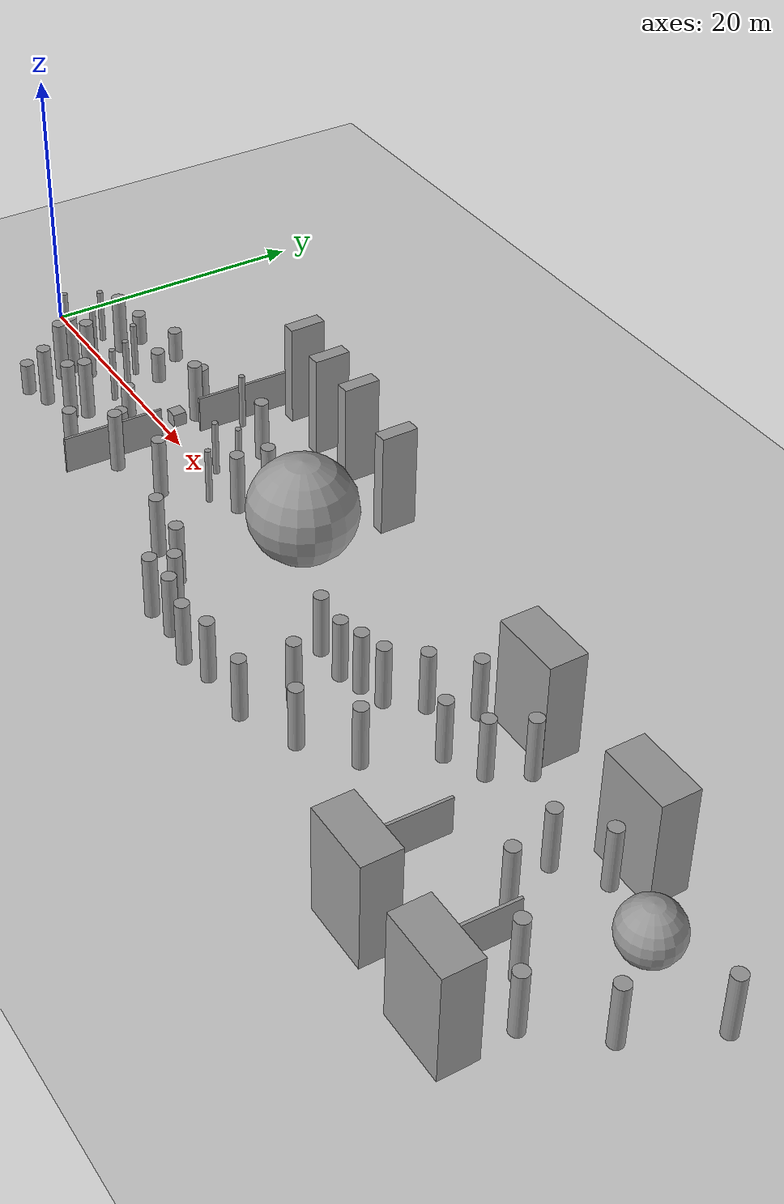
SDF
<sdf version="1.6">
 <world name="default">
  <plugin name="ros_interface_plugin" filename="librotors_gazebo_ros_interface_plugin.so"/>
  <light name="sun" type="directional">
   <pose>0 0 10 0 -0 0</pose>
   <diffuse>0.8 0.8 0.8 1</diffuse>
   <specular>0.2 0.2 0.2 1</specular>
   <attenuation>
    <range>1000</range>
    <constant>0.9</constant>
    <linear>0.01</linear>
    <quadratic>0.001</quadratic>
   </attenuation>
   <direction>-0.5 0.1 -0.9</direction>
  </light>
  <model name="ground_plane">
   <static>1</static>
   <link name="link">
    <collision name="collision">
     <geometry><plane><normal>0 0 1</normal><size>100 100</size></plane></geometry>
     <surface><friction><ode><mu>100</mu><mu2>50</mu2></ode></friction></surface>
    </collision>
    <visual name="visual">
     <cast_shadows>0</cast_shadows>
     <geometry><plane><normal>0 0 1</normal><size>100 100</size></plane></geometry>
     <material>
      <script><uri>file://media/materials/scripts/gazebo.material</uri><name>Gazebo/Grey</name></script>
     </material>
    </visual>
   </link>
  </model>
  <gravity>0 0 -9.8</gravity>
  <magnetic_field>6e-06 2.3e-05 -4.2e-05</magnetic_field>
  <atmosphere type="adiabatic"/>
  <physics name="default_physics" default="0" type="ode">
   <max_step_size>0.001</max_step_size>
   <real_time_factor>1</real_time_factor>
   <real_time_update_rate>1000</real_time_update_rate>
  </physics>
  <scene><ambient>0.4 0.4 0.4 1</ambient><background>0.7 0.7 0.7 1</background><shadows>1</shadows></scene>
  <spherical_coordinates>
   <surface_model>EARTH_WGS84</surface_model>
   <latitude_deg>0</latitude_deg>
   <longitude_deg>0</longitude_deg>
   <elevation>0</elevation>
   <heading_deg>0</heading_deg>
  </spherical_coordinates>
  <model name="unit_cylinder">
   <pose>6.50293 2.03461 2.31233 -0 -0 -0.000822</pose>
   <link name="link">
    <inertial>
     <mass>1</mass>
     <inertia><ixx>0.145833</ixx><ixy>0</ixy><ixz>0</ixz><iyy>0.145833</iyy><iyz>0</iyz><izz>0.125</izz></inertia>
    </inertial>
    <collision name="collision">
     <geometry><cylinder><radius>0.5</radius><length>4.62468</length></cylinder></geometry>
    </collision>
    <visual name="visual">
     <geometry><cylinder><radius>0.5</radius><length>4.62468</length></cylinder></geometry>
     <material>
      <script><name>Gazebo/Grey</name><uri>file://media/materials/scripts/gazebo.material</uri></script>
     </material>
    </visual>
   </link>
  </model>
  <model name="unit_cylinder_0">
   <pose>6.23663 -2.44131 1.24645 0 -0 0.277129</pose>
   <link name="link">
    <inertial>
     <mass>1</mass>
     <inertia><ixx>0.145833</ixx><ixy>0</ixy><ixz>0</ixz><iyy>0.145833</iyy><iyz>0</iyz><izz>0.125</izz></inertia>
    </inertial>
    <collision name="collision">
     <geometry><cylinder><radius>0.5</radius><length>2.4929</length></cylinder></geometry>
    </collision>
    <visual name="visual">
     <geometry><cylinder><radius>0.5</radius><length>2.4929</length></cylinder></geometry>
     <material>
      <script><name>Gazebo/Grey</name><uri>file://media/materials/scripts/gazebo.material</uri></script>
     </material>
    </visual>
   </link>
  </model>
  <model name="unit_cylinder_1">
   <pose>10.075 1.46908 2.13217 -0 -0 -0.013612</pose>
   <link name="link">
    <inertial>
     <mass>1</mass>
     <inertia><ixx>0.145833</ixx><ixy>0</ixy><ixz>0</ixz><iyy>0.145833</iyy><iyz>0</iyz><izz>0.125</izz></inertia>
    </inertial>
    <collision name="collision">
     <geometry><cylinder><radius>0.226518</radius><length>4.26436</length></cylinder></geometry>
    </collision>
    <visual name="visual">
     <geometry><cylinder><radius>0.226518</radius><length>4.26436</length></cylinder></geometry>
     <material>
      <script><name>Gazebo/Grey</name><uri>file://media/materials/scripts/gazebo.material</uri></script>
     </material>
    </visual>
   </link>
  </model>
  <model name="unit_cylinder_clone">
   <pose>8.51391 -1.611 2.31234 -0 -0 -0.022394</pose>
   <link name="link">
    <inertial>
     <mass>1</mass>
     <inertia><ixx>0.145833</ixx><ixy>0</ixy><ixz>0</ixz><iyy>0.145833</iyy><iyz>0</iyz><izz>0.125</izz></inertia>
    </inertial>
    <collision name="collision">
     <geometry><cylinder><radius>0.5</radius><length>4.62468</length></cylinder></geometry>
    </collision>
    <visual name="visual">
     <geometry><cylinder><radius>0.5</radius><length>4.62468</length></cylinder></geometry>
     <material>
      <script><name>Gazebo/Grey</name><uri>file://media/materials/scripts/gazebo.material</uri></script>
     </material>
    </visual>
   </link>
  </model>
  <model name="unit_cylinder_clone_0">
   <pose>7.60953 -3.40559 2.31364 -0.000928 -0.002442 -0.577151</pose>
   <link name="link">
    <inertial>
     <mass>1</mass>
     <inertia><ixx>0.145833</ixx><ixy>0</ixy><ixz>0</ixz><iyy>0.145833</iyy><iyz>0</iyz><izz>0.125</izz></inertia>
    </inertial>
    <collision name="collision">
     <geometry><cylinder><radius>0.5</radius><length>4.62468</length></cylinder></geometry>
    </collision>
    <visual name="visual">
     <geometry><cylinder><radius>0.5</radius><length>4.62468</length></cylinder></geometry>
     <material>
      <script><name>Gazebo/Grey</name><uri>file://media/materials/scripts/gazebo.material</uri></script>
     </material>
    </visual>
   </link>
  </model>
  <model name="unit_cylinder_0_clone">
   <pose>6.24492 3.77978 1.24644 0 -0 7.3e-05</pose>
   <link name="link">
    <inertial>
     <mass>1</mass>
     <inertia><ixx>0.145833</ixx><ixy>0</ixy><ixz>0</ixz><iyy>0.145833</iyy><iyz>0</iyz><izz>0.125</izz></inertia>
    </inertial>
    <collision name="collision">
     <geometry><cylinder><radius>0.5</radius><length>2.4929</length></cylinder></geometry>
    </collision>
    <visual name="visual">
     <geometry><cylinder><radius>0.5</radius><length>2.4929</length></cylinder></geometry>
     <material>
      <script><name>Gazebo/Grey</name><uri>file://media/materials/scripts/gazebo.material</uri></script>
     </material>
    </visual>
   </link>
  </model>
  <model name="unit_cylinder_1_clone">
   <pose>6.20745 -0.046272 2.13217 -0 -0 -0.013612</pose>
   <link name="link">
    <inertial>
     <mass>1</mass>
     <inertia><ixx>0.145833</ixx><ixy>0</ixy><ixz>0</ixz><iyy>0.145833</iyy><iyz>0</iyz><izz>0.125</izz></inertia>
    </inertial>
    <collision name="collision">
     <geometry><cylinder><radius>0.226518</radius><length>4.26436</length></cylinder></geometry>
    </collision>
    <visual name="visual">
     <geometry><cylinder><radius>0.226518</radius><length>4.26436</length></cylinder></geometry>
     <material>
      <script><name>Gazebo/Grey</name><uri>file://media/materials/scripts/gazebo.material</uri></script>
     </material>
    </visual>
   </link>
  </model>
  <model name="unit_cylinder_1_clone_0">
   <pose>12.3322 -1.38154 2.13217 -0 -0 -0.013512</pose>
   <link name="link">
    <inertial>
     <mass>1</mass>
     <inertia><ixx>0.145833</ixx><ixy>0</ixy><ixz>0</ixz><iyy>0.145833</iyy><iyz>0</iyz><izz>0.125</izz></inertia>
    </inertial>
    <collision name="collision">
     <geometry><cylinder><radius>0.226518</radius><length>4.26436</length></cylinder></geometry>
    </collision>
    <visual name="visual">
     <geometry><cylinder><radius>0.226518</radius><length>4.26436</length></cylinder></geometry>
     <material>
      <script><name>Gazebo/Grey</name><uri>file://media/materials/scripts/gazebo.material</uri></script>
     </material>
    </visual>
   </link>
  </model>
  <model name="unit_cylinder_0_clone_clone">
   <pose>11.6874 2.60305 1.24644 0 -0 6.9e-05</pose>
   <link name="link">
    <inertial>
     <mass>1</mass>
     <inertia><ixx>0.145833</ixx><ixy>0</ixy><ixz>0</ixz><iyy>0.145833</iyy><iyz>0</iyz><izz>0.125</izz></inertia>
    </inertial>
    <collision name="collision">
     <geometry><cylinder><radius>0.5</radius><length>2.4929</length></cylinder></geometry>
    </collision>
    <visual name="visual">
     <geometry><cylinder><radius>0.5</radius><length>2.4929</length></cylinder></geometry>
     <material>
      <script><name>Gazebo/Grey</name><uri>file://media/materials/scripts/gazebo.material</uri></script>
     </material>
    </visual>
   </link>
  </model>
  <model name="unit_cylinder_0_clone_clone_0">
   <pose>14.6954 -1.38639 1.24644 0 -0 7.8e-05</pose>
   <link name="link">
    <inertial>
     <mass>1</mass>
     <inertia><ixx>0.145833</ixx><ixy>0</ixy><ixz>0</ixz><iyy>0.145833</iyy><iyz>0</iyz><izz>0.125</izz></inertia>
    </inertial>
    <collision name="collision">
     <geometry><cylinder><radius>0.5</radius><length>2.4929</length></cylinder></geometry>
    </collision>
    <visual name="visual">
     <geometry><cylinder><radius>0.5</radius><length>2.4929</length></cylinder></geometry>
     <material>
      <script><name>Gazebo/Grey</name><uri>file://media/materials/scripts/gazebo.material</uri></script>
     </material>
    </visual>
   </link>
  </model>
  <model name="unit_cylinder_1_clone_1">
   <pose>4.54888 1.41697 2.13217 -0 -0 -0.0136</pose>
   <link name="link">
    <inertial>
     <mass>1</mass>
     <inertia><ixx>0.145833</ixx><ixy>0</ixy><ixz>0</ixz><iyy>0.145833</iyy><iyz>0</iyz><izz>0.125</izz></inertia>
    </inertial>
    <collision name="collision">
     <geometry><cylinder><radius>0.226518</radius><length>4.26436</length></cylinder></geometry>
    </collision>
    <visual name="visual">
     <geometry><cylinder><radius>0.226518</radius><length>4.26436</length></cylinder></geometry>
     <material>
      <script><name>Gazebo/Grey</name><uri>file://media/materials/scripts/gazebo.material</uri></script>
     </material>
    </visual>
   </link>
  </model>
  <model name="grey_wall_clone">
   <static>1</static>
   <link name="link">
    <pose>0 0 1.4 0 -0 0</pose>
    <collision name="collision"><geometry><box><size>7.5 0.2 2.8</size></box></geometry></collision>
    <visual name="visual">
     <cast_shadows>0</cast_shadows>
     <geometry><box><size>7.5 0.2 2.8</size></box></geometry>
     <material>
      <script>
       <uri>model://grey_wall/materials/scripts</uri>
       <uri>model://grey_wall/materials/textures</uri>
       <name>vrc/grey_wall</name>
      </script>
     </material>
    </visual>
   </link>
   <pose>19.2527 5.83227 0 0 -0 1.55087</pose>
  </model>
  <model name="grey_wall_clone_0">
   <static>1</static>
   <link name="link">
    <pose>0 0 1.4 0 -0 0</pose>
    <collision name="collision"><geometry><box><size>7.5 0.2 2.8</size></box></geometry></collision>
    <visual name="visual">
     <cast_shadows>0</cast_shadows>
     <geometry><box><size>7.5 0.2 2.8</size></box></geometry>
     <material>
      <script>
       <uri>model://grey_wall/materials/scripts</uri>
       <uri>model://grey_wall/materials/textures</uri>
       <name>vrc/grey_wall</name>
      </script>
     </material>
    </visual>
   </link>
   <pose>18.8888 -4.60675 0 0 -0 1.55087</pose>
  </model>
  <model name="unit_cylinder_0_clone_clone_clone_0">
   <pose>15.2782 4.36437 1.24644 0 -0 7.9e-05</pose>
   <link name="link">
    <inertial>
     <mass>1</mass>
     <inertia><ixx>0.145833</ixx><ixy>0</ixy><ixz>0</ixz><iyy>0.145833</iyy><iyz>0</iyz><izz>0.125</izz></inertia>
    </inertial>
    <collision name="collision">
     <geometry><cylinder><radius>0.5</radius><length>2.4929</length></cylinder></geometry>
    </collision>
    <visual name="visual">
     <geometry><cylinder><radius>0.5</radius><length>2.4929</length></cylinder></geometry>
     <material>
      <script><name>Gazebo/Grey</name><uri>file://media/materials/scripts/gazebo.material</uri></script>
     </material>
    </visual>
   </link>
  </model>
  <model name="unit_cylinder_0_clone_clone_clone_1">
   <pose>9.7892 5.00969 1.24644 0 -0 8.1e-05</pose>
   <link name="link">
    <inertial>
     <mass>1</mass>
     <inertia><ixx>0.145833</ixx><ixy>0</ixy><ixz>0</ixz><iyy>0.145833</iyy><iyz>0</iyz><izz>0.125</izz></inertia>
    </inertial>
    <collision name="collision">
     <geometry><cylinder><radius>0.5</radius><length>2.4929</length></cylinder></geometry>
    </collision>
    <visual name="visual">
     <geometry><cylinder><radius>0.5</radius><length>2.4929</length></cylinder></geometry>
     <material>
      <script><name>Gazebo/Grey</name><uri>file://media/materials/scripts/gazebo.material</uri></script>
     </material>
    </visual>
   </link>
  </model>
  <model name="unit_cylinder_0_clone_clone_clone_2">
   <pose>8.2035 -6.41578 1.24644 0 -0 7.4e-05</pose>
   <link name="link">
    <inertial>
     <mass>1</mass>
     <inertia><ixx>0.145833</ixx><ixy>0</ixy><ixz>0</ixz><iyy>0.145833</iyy><iyz>0</iyz><izz>0.125</izz></inertia>
    </inertial>
    <collision name="collision">
     <geometry><cylinder><radius>0.5</radius><length>2.4929</length></cylinder></geometry>
    </collision>
    <visual name="visual">
     <geometry><cylinder><radius>0.5</radius><length>2.4929</length></cylinder></geometry>
     <material>
      <script><name>Gazebo/Grey</name><uri>file://media/materials/scripts/gazebo.material</uri></script>
     </material>
    </visual>
   </link>
  </model>
  <model name="unit_cylinder_0_clone_clone_clone_3">
   <pose>17.2109 -3.19137 1.24645 0 -0 7.8e-05</pose>
   <link name="link">
    <inertial>
     <mass>1</mass>
     <inertia><ixx>0.145833</ixx><ixy>0</ixy><ixz>0</ixz><iyy>0.145833</iyy><iyz>0</iyz><izz>0.125</izz></inertia>
    </inertial>
    <collision name="collision">
     <geometry><cylinder><radius>0.5</radius><length>2.4929</length></cylinder></geometry>
    </collision>
    <visual name="visual">
     <geometry><cylinder><radius>0.5</radius><length>2.4929</length></cylinder></geometry>
     <material>
      <script><name>Gazebo/Grey</name><uri>file://media/materials/scripts/gazebo.material</uri></script>
     </material>
    </visual>
   </link>
  </model>
  <model name="unit_cylinder_1_clone_2">
   <pose>20.1487 5.08031 2.13217 -0 -0 -0.013613</pose>
   <link name="link">
    <inertial>
     <mass>1</mass>
     <inertia><ixx>0.145833</ixx><ixy>0</ixy><ixz>0</ixz><iyy>0.145833</iyy><iyz>0</iyz><izz>0.125</izz></inertia>
    </inertial>
    <collision name="collision">
     <geometry><cylinder><radius>0.226518</radius><length>4.26436</length></cylinder></geometry>
    </collision>
    <visual name="visual">
     <geometry><cylinder><radius>0.226518</radius><length>4.26436</length></cylinder></geometry>
     <material>
      <script><name>Gazebo/Grey</name><uri>file://media/materials/scripts/gazebo.material</uri></script>
     </material>
    </visual>
   </link>
  </model>
  <model name="unit_cylinder_1_clone_3">
   <pose>24.2609 0.674248 2.13217 -0 -0 -0.013568</pose>
   <link name="link">
    <inertial>
     <mass>1</mass>
     <inertia><ixx>0.145833</ixx><ixy>0</ixy><ixz>0</ixz><iyy>0.145833</iyy><iyz>0</iyz><izz>0.125</izz></inertia>
    </inertial>
    <collision name="collision">
     <geometry><cylinder><radius>0.226518</radius><length>4.26436</length></cylinder></geometry>
    </collision>
    <visual name="visual">
     <geometry><cylinder><radius>0.226518</radius><length>4.26436</length></cylinder></geometry>
     <material>
      <script><name>Gazebo/Grey</name><uri>file://media/materials/scripts/gazebo.material</uri></script>
     </material>
    </visual>
   </link>
  </model>
  <model name="unit_cylinder_1_clone_4">
   <pose>26.9209 -1.30059 2.13217 -0 -0 -0.01355</pose>
   <link name="link">
    <inertial>
     <mass>1</mass>
     <inertia><ixx>0.145833</ixx><ixy>0</ixy><ixz>0</ixz><iyy>0.145833</iyy><iyz>0</iyz><izz>0.125</izz></inertia>
    </inertial>
    <collision name="collision">
     <geometry><cylinder><radius>0.226518</radius><length>4.26436</length></cylinder></geometry>
    </collision>
    <visual name="visual">
     <geometry><cylinder><radius>0.226518</radius><length>4.26436</length></cylinder></geometry>
     <material>
      <script><name>Gazebo/Grey</name><uri>file://media/materials/scripts/gazebo.material</uri></script>
     </material>
    </visual>
   </link>
  </model>
  <model name="unit_cylinder_1_clone_5">
   <pose>25.7596 1.70307 2.13217 -0 -0 -0.013557</pose>
   <link name="link">
    <inertial>
     <mass>1</mass>
     <inertia><ixx>0.145833</ixx><ixy>0</ixy><ixz>0</ixz><iyy>0.145833</iyy><iyz>0</iyz><izz>0.125</izz></inertia>
    </inertial>
    <collision name="collision">
     <geometry><cylinder><radius>0.226518</radius><length>4.26436</length></cylinder></geometry>
    </collision>
    <visual name="visual">
     <geometry><cylinder><radius>0.226518</radius><length>4.26436</length></cylinder></geometry>
     <material>
      <script><name>Gazebo/Grey</name><uri>file://media/materials/scripts/gazebo.material</uri></script>
     </material>
    </visual>
   </link>
  </model>
  <model name="unit_cylinder_clone_clone_0">
   <pose>24.155 4.44826 2.31233 -0 -0 -0.00126</pose>
   <link name="link">
    <inertial>
     <mass>1</mass>
     <inertia><ixx>0.145833</ixx><ixy>0</ixy><ixz>0</ixz><iyy>0.145833</iyy><iyz>0</iyz><izz>0.125</izz></inertia>
    </inertial>
    <collision name="collision">
     <geometry><cylinder><radius>0.5</radius><length>4.62468</length></cylinder></geometry>
    </collision>
    <visual name="visual">
     <geometry><cylinder><radius>0.5</radius><length>4.62468</length></cylinder></geometry>
     <material>
      <script><name>Gazebo/Grey</name><uri>file://media/materials/scripts/gazebo.material</uri></script>
     </material>
    </visual>
   </link>
  </model>
  <model name="unit_cylinder_clone_clone_1">
   <pose>24.524 -3.81743 2.31233 -0 -0 -0.001251</pose>
   <link name="link">
    <inertial>
     <mass>1</mass>
     <inertia><ixx>0.145833</ixx><ixy>0</ixy><ixz>0</ixz><iyy>0.145833</iyy><iyz>0</iyz><izz>0.125</izz></inertia>
    </inertial>
    <collision name="collision">
     <geometry><cylinder><radius>0.5</radius><length>4.62468</length></cylinder></geometry>
    </collision>
    <visual name="visual">
     <geometry><cylinder><radius>0.5</radius><length>4.62468</length></cylinder></geometry>
     <material>
      <script><name>Gazebo/Grey</name><uri>file://media/materials/scripts/gazebo.material</uri></script>
     </material>
    </visual>
   </link>
  </model>
  <model name="unit_cylinder_clone_clone_2">
   <pose>20.1719 -5.00524 2.31233 -0 -0 -0.001278</pose>
   <link name="link">
    <inertial>
     <mass>1</mass>
     <inertia><ixx>0.145833</ixx><ixy>0</ixy><ixz>0</ixz><iyy>0.145833</iyy><iyz>0</iyz><izz>0.125</izz></inertia>
    </inertial>
    <collision name="collision">
     <geometry><cylinder><radius>0.5</radius><length>4.62468</length></cylinder></geometry>
    </collision>
    <visual name="visual">
     <geometry><cylinder><radius>0.5</radius><length>4.62468</length></cylinder></geometry>
     <material>
      <script><name>Gazebo/Grey</name><uri>file://media/materials/scripts/gazebo.material</uri></script>
     </material>
    </visual>
   </link>
  </model>
  <model name="unit_cylinder_clone_clone_3">
   <pose>29.1032 2.17331 2.31233 -0 -0 -0.001371</pose>
   <link name="link">
    <inertial>
     <mass>1</mass>
     <inertia><ixx>0.145833</ixx><ixy>0</ixy><ixz>0</ixz><iyy>0.145833</iyy><iyz>0</iyz><izz>0.125</izz></inertia>
    </inertial>
    <collision name="collision">
     <geometry><cylinder><radius>0.5</radius><length>4.62468</length></cylinder></geometry>
    </collision>
    <visual name="visual">
     <geometry><cylinder><radius>0.5</radius><length>4.62468</length></cylinder></geometry>
     <material>
      <script><name>Gazebo/Grey</name><uri>file://media/materials/scripts/gazebo.material</uri></script>
     </material>
    </visual>
   </link>
  </model>
  <model name="unit_cylinder_clone_clone_4">
   <pose>28.8228 -0.081194 2.31233 -0 -0 -0.001267</pose>
   <link name="link">
    <inertial>
     <mass>1</mass>
     <inertia><ixx>0.145833</ixx><ixy>0</ixy><ixz>0</ixz><iyy>0.145833</iyy><iyz>0</iyz><izz>0.125</izz></inertia>
    </inertial>
    <collision name="collision">
     <geometry><cylinder><radius>0.5</radius><length>4.62468</length></cylinder></geometry>
    </collision>
    <visual name="visual">
     <geometry><cylinder><radius>0.5</radius><length>4.62468</length></cylinder></geometry>
     <material>
      <script><name>Gazebo/Grey</name><uri>file://media/materials/scripts/gazebo.material</uri></script>
     </material>
    </visual>
   </link>
  </model>
  <model name="unit_sphere">
   <pose>35.4185 1.22026 3.83927 0 -0 0</pose>
   <link name="link">
    <inertial>
     <mass>1</mass>
     <inertia><ixx>0.1</ixx><ixy>0</ixy><ixz>0</ixz><iyy>0.1</iyy><iyz>0</iyz><izz>0.1</izz></inertia>
    </inertial>
    <collision name="collision"><geometry><sphere><radius>3.83927</radius></sphere></geometry></collision>
    <visual name="visual">
     <geometry><sphere><radius>3.83927</radius></sphere></geometry>
     <material>
      <script><name>Gazebo/Grey</name><uri>file://media/materials/scripts/gazebo.material</uri></script>
     </material>
    </visual>
   </link>
  </model>
  <model name="unit_box_2">
   <pose>35.63 8.2642 3.87363 1e-06 -0 0.000351</pose>
   <link name="link">
    <inertial>
     <mass>1</mass>
     <inertia>
      <ixx>0.166667</ixx>
      <ixy>0</ixy>
      <ixz>0</ixz>
      <iyy>0.166667</iyy>
      <iyz>0</iyz>
      <izz>0.166667</izz>
     </inertia>
    </inertial>
    <collision name="collision"><geometry><box><size>1 2.68227 7.74725</size></box></geometry></collision>
    <visual name="visual">
     <geometry><box><size>1 2.68227 7.74725</size></box></geometry>
     <material>
      <script><name>Gazebo/Grey</name><uri>file://media/materials/scripts/gazebo.material</uri></script>
     </material>
    </visual>
   </link>
  </model>
  <model name="unit_cylinder_clone_clone_0_clone">
   <pose>52.2478 0.086474 2.31233 -0 -0 -0.001586</pose>
   <link name="link">
    <inertial>
     <mass>1</mass>
     <inertia><ixx>0.145833</ixx><ixy>0</ixy><ixz>0</ixz><iyy>0.145833</iyy><iyz>0</iyz><izz>0.125</izz></inertia>
    </inertial>
    <collision name="collision">
     <geometry><cylinder><radius>0.5</radius><length>4.62468</length></cylinder></geometry>
    </collision>
    <visual name="visual">
     <geometry><cylinder><radius>0.5</radius><length>4.62468</length></cylinder></geometry>
     <material>
      <script><name>Gazebo/Grey</name><uri>file://media/materials/scripts/gazebo.material</uri></script>
     </material>
    </visual>
   </link>
  </model>
  <model name="unit_cylinder_clone_clone_0_clone_0">
   <pose>54.3865 2.47518 2.31233 -0 -0 -0.001575</pose>
   <link name="link">
    <inertial>
     <mass>1</mass>
     <inertia><ixx>0.145833</ixx><ixy>0</ixy><ixz>0</ixz><iyy>0.145833</iyy><iyz>0</iyz><izz>0.125</izz></inertia>
    </inertial>
    <collision name="collision">
     <geometry><cylinder><radius>0.5</radius><length>4.62468</length></cylinder></geometry>
    </collision>
    <visual name="visual">
     <geometry><cylinder><radius>0.5</radius><length>4.62468</length></cylinder></geometry>
     <material>
      <script><name>Gazebo/Grey</name><uri>file://media/materials/scripts/gazebo.material</uri></script>
     </material>
    </visual>
   </link>
  </model>
  <model name="unit_cylinder_clone_clone_0_clone_1">
   <pose>56.3065 -1.36721 2.31233 -0 -0 -0.00157</pose>
   <link name="link">
    <inertial>
     <mass>1</mass>
     <inertia><ixx>0.145833</ixx><ixy>0</ixy><ixz>0</ixz><iyy>0.145833</iyy><iyz>0</iyz><izz>0.125</izz></inertia>
    </inertial>
    <collision name="collision">
     <geometry><cylinder><radius>0.5</radius><length>4.62468</length></cylinder></geometry>
    </collision>
    <visual name="visual">
     <geometry><cylinder><radius>0.5</radius><length>4.62468</length></cylinder></geometry>
     <material>
      <script><name>Gazebo/Grey</name><uri>file://media/materials/scripts/gazebo.material</uri></script>
     </material>
    </visual>
   </link>
  </model>
  <model name="unit_cylinder_clone_clone_0_clone_2">
   <pose>60.2501 2.29545 2.31233 -0 -0 -0.00156</pose>
   <link name="link">
    <inertial>
     <mass>1</mass>
     <inertia><ixx>0.145833</ixx><ixy>0</ixy><ixz>0</ixz><iyy>0.145833</iyy><iyz>0</iyz><izz>0.125</izz></inertia>
    </inertial>
    <collision name="collision">
     <geometry><cylinder><radius>0.5</radius><length>4.62468</length></cylinder></geometry>
    </collision>
    <visual name="visual">
     <geometry><cylinder><radius>0.5</radius><length>4.62468</length></cylinder></geometry>
     <material>
      <script><name>Gazebo/Grey</name><uri>file://media/materials/scripts/gazebo.material</uri></script>
     </material>
    </visual>
   </link>
  </model>
  <model name="unit_cylinder_clone_clone_0_clone_3">
   <pose>58.8753 -0.128509 2.31233 -0 -0 -0.001554</pose>
   <link name="link">
    <inertial>
     <mass>1</mass>
     <inertia><ixx>0.145833</ixx><ixy>0</ixy><ixz>0</ixz><iyy>0.145833</iyy><iyz>0</iyz><izz>0.125</izz></inertia>
    </inertial>
    <collision name="collision">
     <geometry><cylinder><radius>0.5</radius><length>4.62468</length></cylinder></geometry>
    </collision>
    <visual name="visual">
     <geometry><cylinder><radius>0.5</radius><length>4.62468</length></cylinder></geometry>
     <material>
      <script><name>Gazebo/Grey</name><uri>file://media/materials/scripts/gazebo.material</uri></script>
     </material>
    </visual>
   </link>
  </model>
  <model name="unit_cylinder_clone_clone_0_clone_4">
   <pose>54.2638 -5.9124 2.31233 -0 -0 -0.001546</pose>
   <link name="link">
    <inertial>
     <mass>1</mass>
     <inertia><ixx>0.145833</ixx><ixy>0</ixy><ixz>0</ixz><iyy>0.145833</iyy><iyz>0</iyz><izz>0.125</izz></inertia>
    </inertial>
    <collision name="collision">
     <geometry><cylinder><radius>0.5</radius><length>4.62468</length></cylinder></geometry>
    </collision>
    <visual name="visual">
     <geometry><cylinder><radius>0.5</radius><length>4.62468</length></cylinder></geometry>
     <material>
      <script><name>Gazebo/Grey</name><uri>file://media/materials/scripts/gazebo.material</uri></script>
     </material>
    </visual>
   </link>
  </model>
  <model name="unit_cylinder_clone_clone_0_clone_5">
   <pose>50.9493 -8.3517 2.31233 -0 -0 -0.00154</pose>
   <link name="link">
    <inertial>
     <mass>1</mass>
     <inertia><ixx>0.145833</ixx><ixy>0</ixy><ixz>0</ixz><iyy>0.145833</iyy><iyz>0</iyz><izz>0.125</izz></inertia>
    </inertial>
    <collision name="collision">
     <geometry><cylinder><radius>0.5</radius><length>4.62468</length></cylinder></geometry>
    </collision>
    <visual name="visual">
     <geometry><cylinder><radius>0.5</radius><length>4.62468</length></cylinder></geometry>
     <material>
      <script><name>Gazebo/Grey</name><uri>file://media/materials/scripts/gazebo.material</uri></script>
     </material>
    </visual>
   </link>
  </model>
  <model name="unit_cylinder_clone_clone_0_clone_6">
   <pose>46.9996 -10 2.31233 -0 -0 -0.001528</pose>
   <link name="link">
    <inertial>
     <mass>1</mass>
     <inertia><ixx>0.145833</ixx><ixy>0</ixy><ixz>0</ixz><iyy>0.145833</iyy><iyz>0</iyz><izz>0.125</izz></inertia>
    </inertial>
    <collision name="collision">
     <geometry><cylinder><radius>0.5</radius><length>4.62468</length></cylinder></geometry>
    </collision>
    <visual name="visual">
     <geometry><cylinder><radius>0.5</radius><length>4.62468</length></cylinder></geometry>
     <material>
      <script><name>Gazebo/Grey</name><uri>file://media/materials/scripts/gazebo.material</uri></script>
     </material>
    </visual>
   </link>
  </model>
  <model name="unit_cylinder_clone_clone_0_clone_7">
   <pose>42.9996 -10 2.31233 -0 -0 -0.001522</pose>
   <link name="link">
    <inertial>
     <mass>1</mass>
     <inertia><ixx>0.145833</ixx><ixy>0</ixy><ixz>0</ixz><iyy>0.145833</iyy><iyz>0</iyz><izz>0.125</izz></inertia>
    </inertial>
    <collision name="collision">
     <geometry><cylinder><radius>0.5</radius><length>4.62468</length></cylinder></geometry>
    </collision>
    <visual name="visual">
     <geometry><cylinder><radius>0.5</radius><length>4.62468</length></cylinder></geometry>
     <material>
      <script><name>Gazebo/Grey</name><uri>file://media/materials/scripts/gazebo.material</uri></script>
     </material>
    </visual>
   </link>
  </model>
  <model name="unit_cylinder_clone_clone_0_clone_8">
   <pose>37.9996 -10 2.31233 -0 -0 -0.001514</pose>
   <link name="link">
    <inertial>
     <mass>1</mass>
     <inertia><ixx>0.145833</ixx><ixy>0</ixy><ixz>0</ixz><iyy>0.145833</iyy><iyz>0</iyz><izz>0.125</izz></inertia>
    </inertial>
    <collision name="collision">
     <geometry><cylinder><radius>0.5</radius><length>4.62468</length></cylinder></geometry>
    </collision>
    <visual name="visual">
     <geometry><cylinder><radius>0.5</radius><length>4.62468</length></cylinder></geometry>
     <material>
      <script><name>Gazebo/Grey</name><uri>file://media/materials/scripts/gazebo.material</uri></script>
     </material>
    </visual>
   </link>
  </model>
  <model name="unit_cylinder_clone_clone_0_clone_9">
   <pose>40.7369 -10.5279 2.31233 -0 -0 -0.001503</pose>
   <link name="link">
    <inertial>
     <mass>1</mass>
     <inertia><ixx>0.145833</ixx><ixy>0</ixy><ixz>0</ixz><iyy>0.145833</iyy><iyz>0</iyz><izz>0.125</izz></inertia>
    </inertial>
    <collision name="collision">
     <geometry><cylinder><radius>0.5</radius><length>4.62468</length></cylinder></geometry>
    </collision>
    <visual name="visual">
     <geometry><cylinder><radius>0.5</radius><length>4.62468</length></cylinder></geometry>
     <material>
      <script><name>Gazebo/Grey</name><uri>file://media/materials/scripts/gazebo.material</uri></script>
     </material>
    </visual>
   </link>
  </model>
  <model name="unit_cylinder_clone_clone_0_clone_10">
   <pose>35.6467 -10.1708 2.31233 -0 -0 -0.010855</pose>
   <link name="link">
    <inertial>
     <mass>1</mass>
     <inertia><ixx>0.145833</ixx><ixy>0</ixy><ixz>0</ixz><iyy>0.145833</iyy><iyz>0</iyz><izz>0.125</izz></inertia>
    </inertial>
    <collision name="collision">
     <geometry><cylinder><radius>0.5</radius><length>4.62468</length></cylinder></geometry>
    </collision>
    <visual name="visual">
     <geometry><cylinder><radius>0.5</radius><length>4.62468</length></cylinder></geometry>
     <material>
      <script><name>Gazebo/Grey</name><uri>file://media/materials/scripts/gazebo.material</uri></script>
     </material>
    </visual>
   </link>
  </model>
  <model name="unit_cylinder_clone_clone_0_clone_11">
   <pose>50.4646 -1.93624 2.31233 -0 -0 -0.001485</pose>
   <link name="link">
    <inertial>
     <mass>1</mass>
     <inertia><ixx>0.145833</ixx><ixy>0</ixy><ixz>0</ixz><iyy>0.145833</iyy><iyz>0</iyz><izz>0.125</izz></inertia>
    </inertial>
    <collision name="collision">
     <geometry><cylinder><radius>0.5</radius><length>4.62468</length></cylinder></geometry>
    </collision>
    <visual name="visual">
     <geometry><cylinder><radius>0.5</radius><length>4.62468</length></cylinder></geometry>
     <material>
      <script><name>Gazebo/Grey</name><uri>file://media/materials/scripts/gazebo.material</uri></script>
     </material>
    </visual>
   </link>
  </model>
  <model name="unit_cylinder_clone_clone_0_clone_12">
   <pose>48.6862 -2.43834 2.31233 -0 -0 -0.001474</pose>
   <link name="link">
    <inertial>
     <mass>1</mass>
     <inertia><ixx>0.145833</ixx><ixy>0</ixy><ixz>0</ixz><iyy>0.145833</iyy><iyz>0</iyz><izz>0.125</izz></inertia>
    </inertial>
    <collision name="collision">
     <geometry><cylinder><radius>0.5</radius><length>4.62468</length></cylinder></geometry>
    </collision>
    <visual name="visual">
     <geometry><cylinder><radius>0.5</radius><length>4.62468</length></cylinder></geometry>
     <material>
      <script><name>Gazebo/Grey</name><uri>file://media/materials/scripts/gazebo.material</uri></script>
     </material>
    </visual>
   </link>
  </model>
  <model name="grey_wall_clone_clone_0">
   <static>1</static>
   <link name="link">
    <pose>0 0 1.4 0 -0 0</pose>
    <collision name="collision"><geometry><box><size>7.5 0.2 2.8</size></box></geometry></collision>
    <visual name="visual">
     <cast_shadows>0</cast_shadows>
     <geometry><box><size>7.5 0.2 2.8</size></box></geometry>
     <material>
      <script>
       <uri>model://grey_wall/materials/scripts</uri>
       <uri>model://grey_wall/materials/textures</uri>
       <name>vrc/grey_wall</name>
      </script>
     </material>
    </visual>
   </link>
   <pose>61.496 -8.02781 0 0 -0 1.55087</pose>
  </model>
  <model name="grey_wall_clone_clone_1">
   <static>1</static>
   <link name="link">
    <pose>0 0 1.4 0 -0 0</pose>
    <collision name="collision"><geometry><box><size>7.5 0.2 2.8</size></box></geometry></collision>
    <visual name="visual">
     <cast_shadows>0</cast_shadows>
     <geometry><box><size>7.5 0.2 2.8</size></box></geometry>
     <material>
      <script>
       <uri>model://grey_wall/materials/scripts</uri>
       <uri>model://grey_wall/materials/textures</uri>
       <name>vrc/grey_wall</name>
      </script>
     </material>
    </visual>
   </link>
   <pose>69.6184 -8.98556 0 0 -0 1.55087</pose>
  </model>
  <model name="unit_box_2_clone">
   <pose>57.5185 4.49132 3.87363 0 -0 0.000362</pose>
   <link name="link">
    <inertial>
     <mass>1</mass>
     <inertia>
      <ixx>0.166667</ixx>
      <ixy>0</ixy>
      <ixz>0</ixz>
      <iyy>0.166667</iyy>
      <iyz>0</iyz>
      <izz>0.166667</izz>
     </inertia>
    </inertial>
    <collision name="collision"><geometry><box><size>4.97092 2.68227 7.74725</size></box></geometry></collision>
    <visual name="visual">
     <geometry><box><size>4.97092 2.68227 7.74725</size></box></geometry>
     <material>
      <script><name>Gazebo/Grey</name><uri>file://media/materials/scripts/gazebo.material</uri></script>
     </material>
    </visual>
   </link>
  </model>
  <model name="unit_box_2_clone_clone">
   <pose>69.387 3.16794 3.87362 0 -0 0.00055</pose>
   <link name="link">
    <inertial>
     <mass>1</mass>
     <inertia>
      <ixx>0.166667</ixx>
      <ixy>0</ixy>
      <ixz>0</ixz>
      <iyy>0.166667</iyy>
      <iyz>0</iyz>
      <izz>0.166667</izz>
     </inertia>
    </inertial>
    <collision name="collision"><geometry><box><size>4.97092 2.68227 7.74725</size></box></geometry></collision>
    <visual name="visual">
     <geometry><box><size>4.97092 2.68227 7.74725</size></box></geometry>
     <material>
      <script><name>Gazebo/Grey</name><uri>file://media/materials/scripts/gazebo.material</uri></script>
     </material>
    </visual>
   </link>
  </model>
  <model name="unit_box_2_clone_clone_0">
   <pose>64.9217 -12.7552 3.87362 0 -0 0.000533</pose>
   <link name="link">
    <inertial>
     <mass>1</mass>
     <inertia>
      <ixx>0.166667</ixx>
      <ixy>0</ixy>
      <ixz>0</ixz>
      <iyy>0.166667</iyy>
      <iyz>0</iyz>
      <izz>0.166667</izz>
     </inertia>
    </inertial>
    <collision name="collision"><geometry><box><size>4.97092 2.68227 7.74725</size></box></geometry></collision>
    <visual name="visual">
     <geometry><box><size>4.97092 2.68227 7.74725</size></box></geometry>
     <material>
      <script><name>Gazebo/Grey</name><uri>file://media/materials/scripts/gazebo.material</uri></script>
     </material>
    </visual>
   </link>
  </model>
  <model name="unit_box_2_clone_clone_1">
   <pose>73.0811 -13.1864 3.87363 -0 1e-06 0.000603</pose>
   <link name="link">
    <inertial>
     <mass>1</mass>
     <inertia>
      <ixx>0.166667</ixx>
      <ixy>0</ixy>
      <ixz>0</ixz>
      <iyy>0.166667</iyy>
      <iyz>0</iyz>
      <izz>0.166667</izz>
     </inertia>
    </inertial>
    <collision name="collision"><geometry><box><size>4.97092 2.68227 7.74725</size></box></geometry></collision>
    <visual name="visual">
     <geometry><box><size>4.97092 2.68227 7.74725</size></box></geometry>
     <material>
      <script><name>Gazebo/Grey</name><uri>file://media/materials/scripts/gazebo.material</uri></script>
     </material>
    </visual>
   </link>
  </model>
  <model name="unit_box_2_clone_0">
   <pose>29.4892 9.11503 3.87362 0 -0 0.00096</pose>
   <link name="link">
    <inertial>
     <mass>1</mass>
     <inertia>
      <ixx>0.166667</ixx>
      <ixy>0</ixy>
      <ixz>0</ixz>
      <iyy>0.166667</iyy>
      <iyz>0</iyz>
      <izz>0.166667</izz>
     </inertia>
    </inertial>
    <collision name="collision"><geometry><box><size>1 2.68227 7.74725</size></box></geometry></collision>
    <visual name="visual">
     <geometry><box><size>1 2.68227 7.74725</size></box></geometry>
     <material>
      <script><name>Gazebo/Grey</name><uri>file://media/materials/scripts/gazebo.material</uri></script>
     </material>
    </visual>
   </link>
  </model>
  <model name="unit_box_2_clone_1">
   <pose>25.4181 9.19462 3.87362 0 0 -0.001737</pose>
   <link name="link">
    <inertial>
     <mass>1</mass>
     <inertia>
      <ixx>0.166667</ixx>
      <ixy>0</ixy>
      <ixz>0</ixz>
      <iyy>0.166667</iyy>
      <iyz>0</iyz>
      <izz>0.166667</izz>
     </inertia>
    </inertial>
    <collision name="collision"><geometry><box><size>1 2.68227 7.74725</size></box></geometry></collision>
    <visual name="visual">
     <geometry><box><size>1 2.68227 7.74725</size></box></geometry>
     <material>
      <script><name>Gazebo/Grey</name><uri>file://media/materials/scripts/gazebo.material</uri></script>
     </material>
    </visual>
   </link>
  </model>
  <model name="unit_box_2_clone_2">
   <pose>21.0646 9.75861 3.87363 -1e-06 -0 0.005217</pose>
   <link name="link">
    <inertial>
     <mass>1</mass>
     <inertia>
      <ixx>0.166667</ixx>
      <ixy>0</ixy>
      <ixz>0</ixz>
      <iyy>0.166667</iyy>
      <iyz>0</iyz>
      <izz>0.166667</izz>
     </inertia>
    </inertial>
    <collision name="collision"><geometry><box><size>1 2.68227 7.74725</size></box></geometry></collision>
    <visual name="visual">
     <geometry><box><size>1 2.68227 7.74725</size></box></geometry>
     <material>
      <script><name>Gazebo/Grey</name><uri>file://media/materials/scripts/gazebo.material</uri></script>
     </material>
    </visual>
   </link>
  </model>
  <model name="unit_sphere_0">
   <pose>74.5631 -0.353216 2.05833 0 -0 0</pose>
   <link name="link">
    <inertial>
     <mass>1</mass>
     <inertia><ixx>0.1</ixx><ixy>0</ixy><ixz>0</ixz><iyy>0.1</iyy><iyz>0</iyz><izz>0.1</izz></inertia>
    </inertial>
    <collision name="collision"><geometry><sphere><radius>2.05833</radius></sphere></geometry></collision>
    <visual name="visual">
     <geometry><sphere><radius>2.05833</radius></sphere></geometry>
     <material>
      <script><name>Gazebo/Grey</name><uri>file://media/materials/scripts/gazebo.material</uri></script>
     </material>
    </visual>
   </link>
  </model>
  <model name="unit_cylinder_clone_clone_0_clone_4_clone">
   <pose>66.5805 -1.06454 2.31233 -0 -0 -0.00165</pose>
   <link name="link">
    <inertial>
     <mass>1</mass>
     <inertia><ixx>0.145833</ixx><ixy>0</ixy><ixz>0</ixz><iyy>0.145833</iyy><iyz>0</iyz><izz>0.125</izz></inertia>
    </inertial>
    <collision name="collision">
     <geometry><cylinder><radius>0.5</radius><length>4.62468</length></cylinder></geometry>
    </collision>
    <visual name="visual">
     <geometry><cylinder><radius>0.5</radius><length>4.62468</length></cylinder></geometry>
     <material>
      <script><name>Gazebo/Grey</name><uri>file://media/materials/scripts/gazebo.material</uri></script>
     </material>
    </visual>
   </link>
  </model>
  <model name="unit_cylinder_clone_clone_0_clone_4_clone_0">
   <pose>67.7733 -4.67179 2.31233 -0 -0 -0.001642</pose>
   <link name="link">
    <inertial>
     <mass>1</mass>
     <inertia><ixx>0.145833</ixx><ixy>0</ixy><ixz>0</ixz><iyy>0.145833</iyy><iyz>0</iyz><izz>0.125</izz></inertia>
    </inertial>
    <collision name="collision">
     <geometry><cylinder><radius>0.5</radius><length>4.62468</length></cylinder></geometry>
    </collision>
    <visual name="visual">
     <geometry><cylinder><radius>0.5</radius><length>4.62468</length></cylinder></geometry>
     <material>
      <script><name>Gazebo/Grey</name><uri>file://media/materials/scripts/gazebo.material</uri></script>
     </material>
    </visual>
   </link>
  </model>
  <model name="unit_cylinder_clone_clone_0_clone_4_clone_1">
   <pose>69.451 0.976942 2.31233 -0 -0 -0.001627</pose>
   <link name="link">
    <inertial>
     <mass>1</mass>
     <inertia><ixx>0.145833</ixx><ixy>0</ixy><ixz>0</ixz><iyy>0.145833</iyy><iyz>0</iyz><izz>0.125</izz></inertia>
    </inertial>
    <collision name="collision">
     <geometry><cylinder><radius>0.5</radius><length>4.62468</length></cylinder></geometry>
    </collision>
    <visual name="visual">
     <geometry><cylinder><radius>0.5</radius><length>4.62468</length></cylinder></geometry>
     <material>
      <script><name>Gazebo/Grey</name><uri>file://media/materials/scripts/gazebo.material</uri></script>
     </material>
    </visual>
   </link>
  </model>
  <model name="unit_cylinder_clone_clone_0_clone_4_clone_2">
   <pose>78.2217 -5.28178 2.31233 -0 -0 -0.001617</pose>
   <link name="link">
    <inertial>
     <mass>1</mass>
     <inertia><ixx>0.145833</ixx><ixy>0</ixy><ixz>0</ixz><iyy>0.145833</iyy><iyz>0</iyz><izz>0.125</izz></inertia>
    </inertial>
    <collision name="collision">
     <geometry><cylinder><radius>0.5</radius><length>4.62468</length></cylinder></geometry>
    </collision>
    <visual name="visual">
     <geometry><cylinder><radius>0.5</radius><length>4.62468</length></cylinder></geometry>
     <material>
      <script><name>Gazebo/Grey</name><uri>file://media/materials/scripts/gazebo.material</uri></script>
     </material>
    </visual>
   </link>
  </model>
  <model name="unit_cylinder_clone_clone_0_clone_4_clone_3">
   <pose>74.9968 -9.19657 2.31233 -0 -0 -0.001612</pose>
   <link name="link">
    <inertial>
     <mass>1</mass>
     <inertia><ixx>0.145833</ixx><ixy>0</ixy><ixz>0</ixz><iyy>0.145833</iyy><iyz>0</iyz><izz>0.125</izz></inertia>
    </inertial>
    <collision name="collision">
     <geometry><cylinder><radius>0.5</radius><length>4.62468</length></cylinder></geometry>
    </collision>
    <visual name="visual">
     <geometry><cylinder><radius>0.5</radius><length>4.62468</length></cylinder></geometry>
     <material>
      <script><name>Gazebo/Grey</name><uri>file://media/materials/scripts/gazebo.material</uri></script>
     </material>
    </visual>
   </link>
  </model>
  <model name="unit_cylinder_clone_clone_0_clone_4_clone_4">
   <pose>72.1521 -7.1369 2.31233 -0 -0 -0.001601</pose>
   <link name="link">
    <inertial>
     <mass>1</mass>
     <inertia><ixx>0.145833</ixx><ixy>0</ixy><ixz>0</ixz><iyy>0.145833</iyy><iyz>0</iyz><izz>0.125</izz></inertia>
    </inertial>
    <collision name="collision">
     <geometry><cylinder><radius>0.5</radius><length>4.62468</length></cylinder></geometry>
    </collision>
    <visual name="visual">
     <geometry><cylinder><radius>0.5</radius><length>4.62468</length></cylinder></geometry>
     <material>
      <script><name>Gazebo/Grey</name><uri>file://media/materials/scripts/gazebo.material</uri></script>
     </material>
    </visual>
   </link>
  </model>
  <model name="unit_cylinder_clone_clone_0_clone_4_clone_5">
   <pose>80.7309 0.149632 2.31233 -0 -0 -0.001581</pose>
   <link name="link">
    <inertial>
     <mass>1</mass>
     <inertia><ixx>0.145833</ixx><ixy>0</ixy><ixz>0</ixz><iyy>0.145833</iyy><iyz>0</iyz><izz>0.125</izz></inertia>
    </inertial>
    <collision name="collision">
     <geometry><cylinder><radius>0.5</radius><length>4.62468</length></cylinder></geometry>
    </collision>
    <visual name="visual">
     <geometry><cylinder><radius>0.5</radius><length>4.62468</length></cylinder></geometry>
     <material>
      <script><name>Gazebo/Grey</name><uri>file://media/materials/scripts/gazebo.material</uri></script>
     </material>
    </visual>
   </link>
  </model>
  <model name="unit_cylinder_clone_clone_0_clone_4_clone_6">
   <pose>44.4375 -2.75474 2.31233 -0 -0 -0.001561</pose>
   <link name="link">
    <inertial>
     <mass>1</mass>
     <inertia><ixx>0.145833</ixx><ixy>0</ixy><ixz>0</ixz><iyy>0.145833</iyy><iyz>0</iyz><izz>0.125</izz></inertia>
    </inertial>
    <collision name="collision">
     <geometry><cylinder><radius>0.5</radius><length>4.62468</length></cylinder></geometry>
    </collision>
    <visual name="visual">
     <geometry><cylinder><radius>0.5</radius><length>4.62468</length></cylinder></geometry>
     <material>
      <script><name>Gazebo/Grey</name><uri>file://media/materials/scripts/gazebo.material</uri></script>
     </material>
    </visual>
   </link>
  </model>
  <model name="unit_cylinder_clone_clone_0_clone_4_clone_7">
   <pose>47.052 -2.93992 2.31233 -0 -0 -0.001549</pose>
   <link name="link">
    <inertial>
     <mass>1</mass>
     <inertia><ixx>0.145833</ixx><ixy>0</ixy><ixz>0</ixz><iyy>0.145833</iyy><iyz>0</iyz><izz>0.125</izz></inertia>
    </inertial>
    <collision name="collision">
     <geometry><cylinder><radius>0.5</radius><length>4.62468</length></cylinder></geometry>
    </collision>
    <visual name="visual">
     <geometry><cylinder><radius>0.5</radius><length>4.62468</length></cylinder></geometry>
     <material>
      <script><name>Gazebo/Grey</name><uri>file://media/materials/scripts/gazebo.material</uri></script>
     </material>
    </visual>
   </link>
  </model>
  <model name="unit_cylinder_clone_clone_0_clone_4_clone_8">
   <pose>47.3493 -6.4077 2.31233 -0 -0 -0.001533</pose>
   <link name="link">
    <inertial>
     <mass>1</mass>
     <inertia><ixx>0.145833</ixx><ixy>0</ixy><ixz>0</ixz><iyy>0.145833</iyy><iyz>0</iyz><izz>0.125</izz></inertia>
    </inertial>
    <collision name="collision">
     <geometry><cylinder><radius>0.5</radius><length>4.62468</length></cylinder></geometry>
    </collision>
    <visual name="visual">
     <geometry><cylinder><radius>0.5</radius><length>4.62468</length></cylinder></geometry>
     <material>
      <script><name>Gazebo/Grey</name><uri>file://media/materials/scripts/gazebo.material</uri></script>
     </material>
    </visual>
   </link>
  </model>
  <model name="unit_cylinder_clone_clone_0_clone_4_clone_9">
   <pose>33.6201 -7.20749 2.31233 -0 -0 -0.001514</pose>
   <link name="link">
    <inertial>
     <mass>1</mass>
     <inertia><ixx>0.145833</ixx><ixy>0</ixy><ixz>0</ixz><iyy>0.145833</iyy><iyz>0</iyz><izz>0.125</izz></inertia>
    </inertial>
    <collision name="collision">
     <geometry><cylinder><radius>0.5</radius><length>4.62468</length></cylinder></geometry>
    </collision>
    <visual name="visual">
     <geometry><cylinder><radius>0.5</radius><length>4.62468</length></cylinder></geometry>
     <material>
      <script><name>Gazebo/Grey</name><uri>file://media/materials/scripts/gazebo.material</uri></script>
     </material>
    </visual>
   </link>
  </model>
  <model name="unit_cylinder_clone_clone_0_clone_4_clone_10">
   <pose>30.2925 -6.94383 2.31233 -0 -0 -0.00151</pose>
   <link name="link">
    <inertial>
     <mass>1</mass>
     <inertia><ixx>0.145833</ixx><ixy>0</ixy><ixz>0</ixz><iyy>0.145833</iyy><iyz>0</iyz><izz>0.125</izz></inertia>
    </inertial>
    <collision name="collision">
     <geometry><cylinder><radius>0.5</radius><length>4.62468</length></cylinder></geometry>
    </collision>
    <visual name="visual">
     <geometry><cylinder><radius>0.5</radius><length>4.62468</length></cylinder></geometry>
     <material>
      <script><name>Gazebo/Grey</name><uri>file://media/materials/scripts/gazebo.material</uri></script>
     </material>
    </visual>
   </link>
  </model>
  <model name="unit_cylinder_clone_clone_0_clone_4_clone_11">
   <pose>36.1571 -8.64329 2.31233 -0 -0 -0.001494</pose>
   <link name="link">
    <inertial>
     <mass>1</mass>
     <inertia><ixx>0.145833</ixx><ixy>0</ixy><ixz>0</ixz><iyy>0.145833</iyy><iyz>0</iyz><izz>0.125</izz></inertia>
    </inertial>
    <collision name="collision">
     <geometry><cylinder><radius>0.5</radius><length>4.62468</length></cylinder></geometry>
    </collision>
    <visual name="visual">
     <geometry><cylinder><radius>0.5</radius><length>4.62468</length></cylinder></geometry>
     <material>
      <script><name>Gazebo/Grey</name><uri>file://media/materials/scripts/gazebo.material</uri></script>
     </material>
    </visual>
   </link>
  </model>
  <model name="unit_cylinder_clone_clone_0_clone_4_clone_12">
   <pose>17.5565 2.6695 2.31233 0 -0 -0.001511</pose>
   <link name="link">
    <inertial>
     <mass>1</mass>
     <inertia><ixx>0.145833</ixx><ixy>0</ixy><ixz>0</ixz><iyy>0.145833</iyy><iyz>0</iyz><izz>0.125</izz></inertia>
    </inertial>
    <collision name="collision">
     <geometry><cylinder><radius>0.5</radius><length>4.62468</length></cylinder></geometry>
    </collision>
    <visual name="visual">
     <geometry><cylinder><radius>0.5</radius><length>4.62468</length></cylinder></geometry>
     <material>
      <script><name>Gazebo/Grey</name><uri>file://media/materials/scripts/gazebo.material</uri></script>
     </material>
    </visual>
   </link>
  </model>
  <model name="unit_cylinder_clone_0_clone">
   <pose>12.8229 -5.14884 2.31233 0 -0 -0.00094</pose>
   <link name="link">
    <inertial>
     <mass>1</mass>
     <inertia><ixx>0.145833</ixx><ixy>0</ixy><ixz>0</ixz><iyy>0.145833</iyy><iyz>0</iyz><izz>0.125</izz></inertia>
    </inertial>
    <collision name="collision">
     <geometry><cylinder><radius>0.5</radius><length>4.62468</length></cylinder></geometry>
    </collision>
    <visual name="visual">
     <geometry><cylinder><radius>0.5</radius><length>4.62468</length></cylinder></geometry>
     <material>
      <script><name>Gazebo/Grey</name><uri>file://media/materials/scripts/gazebo.material</uri></script>
     </material>
    </visual>
   </link>
  </model>
  <model name="unit_cylinder_clone_0_clone_0">
   <pose>10.1157 -5.79746 2.31233 0 -0 -0.000935</pose>
   <link name="link">
    <inertial>
     <mass>1</mass>
     <inertia><ixx>0.145833</ixx><ixy>0</ixy><ixz>0</ixz><iyy>0.145833</iyy><iyz>0</iyz><izz>0.125</izz></inertia>
    </inertial>
    <collision name="collision">
     <geometry><cylinder><radius>0.5</radius><length>4.62468</length></cylinder></geometry>
    </collision>
    <visual name="visual">
     <geometry><cylinder><radius>0.5</radius><length>4.62468</length></cylinder></geometry>
     <material>
      <script><name>Gazebo/Grey</name><uri>file://media/materials/scripts/gazebo.material</uri></script>
     </material>
    </visual>
   </link>
  </model>
  <model name="unit_cylinder_clone_0_clone_1">
   <pose>13.183 -3.97059 2.31234 -0 -0 -0.000929</pose>
   <link name="link">
    <inertial>
     <mass>1</mass>
     <inertia><ixx>0.145833</ixx><ixy>0</ixy><ixz>0</ixz><iyy>0.145833</iyy><iyz>0</iyz><izz>0.125</izz></inertia>
    </inertial>
    <collision name="collision">
     <geometry><cylinder><radius>0.5</radius><length>4.62468</length></cylinder></geometry>
    </collision>
    <visual name="visual">
     <geometry><cylinder><radius>0.5</radius><length>4.62468</length></cylinder></geometry>
     <material>
      <script><name>Gazebo/Grey</name><uri>file://media/materials/scripts/gazebo.material</uri></script>
     </material>
    </visual>
   </link>
  </model>
  <model name="unit_cylinder_clone_0_clone_2">
   <pose>18.2302 -7.54043 2.31234 0 -0 -0.000876</pose>
   <link name="link">
    <inertial>
     <mass>1</mass>
     <inertia><ixx>0.145833</ixx><ixy>0</ixy><ixz>0</ixz><iyy>0.145833</iyy><iyz>0</iyz><izz>0.125</izz></inertia>
    </inertial>
    <collision name="collision">
     <geometry><cylinder><radius>0.5</radius><length>4.62468</length></cylinder></geometry>
    </collision>
    <visual name="visual">
     <geometry><cylinder><radius>0.5</radius><length>4.62468</length></cylinder></geometry>
     <material>
      <script><name>Gazebo/Grey</name><uri>file://media/materials/scripts/gazebo.material</uri></script>
     </material>
    </visual>
   </link>
  </model>
  <model name="unit_cylinder_clone_0_clone_3">
   <pose>7.23262 -2.33137 2.31233 0 -0 -0.271046</pose>
   <link name="link">
    <inertial>
     <mass>1</mass>
     <inertia><ixx>0.145833</ixx><ixy>0</ixy><ixz>0</ixz><iyy>0.145833</iyy><iyz>0</iyz><izz>0.125</izz></inertia>
    </inertial>
    <collision name="collision">
     <geometry><cylinder><radius>0.5</radius><length>4.62468</length></cylinder></geometry>
    </collision>
    <visual name="visual">
     <geometry><cylinder><radius>0.5</radius><length>4.62468</length></cylinder></geometry>
     <material>
      <script><name>Gazebo/Grey</name><uri>file://media/materials/scripts/gazebo.material</uri></script>
     </material>
    </visual>
   </link>
  </model>
  <model name="unit_box_0_clone">
   <pose>17.3596 1.17481 0.499995 1e-05 -0 0</pose>
   <link name="link">
    <inertial>
     <mass>1</mass>
     <inertia>
      <ixx>0.166667</ixx>
      <ixy>0</ixy>
      <ixz>0</ixz>
      <iyy>0.166667</iyy>
      <iyz>0</iyz>
      <izz>0.166667</izz>
     </inertia>
    </inertial>
    <collision name="collision"><geometry><box><size>1 1 1</size></box></geometry></collision>
    <visual name="visual">
     <geometry><box><size>1 1 1</size></box></geometry>
     <material>
      <script><name>Gazebo/Grey</name><uri>file://media/materials/scripts/gazebo.material</uri></script>
     </material>
    </visual>
   </link>
  </model>
  <model name="unit_cylinder_1_clone_clone">
   <pose>11.7394 -0.009029 2.13217 0 0 -0.013611</pose>
   <link name="link">
    <inertial>
     <mass>1</mass>
     <inertia><ixx>0.145833</ixx><ixy>0</ixy><ixz>0</ixz><iyy>0.145833</iyy><iyz>0</iyz><izz>0.125</izz></inertia>
    </inertial>
    <collision name="collision">
     <geometry><cylinder><radius>0.226518</radius><length>4.26436</length></cylinder></geometry>
    </collision>
    <visual name="visual">
     <geometry><cylinder><radius>0.226518</radius><length>4.26436</length></cylinder></geometry>
     <material>
      <script><name>Gazebo/Grey</name><uri>file://media/materials/scripts/gazebo.material</uri></script>
     </material>
    </visual>
   </link>
  </model>
  <model name="unit_cylinder_1_clone_clone_0">
   <pose>3.42704 -1.02192 2.13218 0 0 -0.013481</pose>
   <link name="link">
    <inertial>
     <mass>1</mass>
     <inertia><ixx>0.145833</ixx><ixy>0</ixy><ixz>0</ixz><iyy>0.145833</iyy><iyz>0</iyz><izz>0.125</izz></inertia>
    </inertial>
    <collision name="collision">
     <geometry><cylinder><radius>0.226518</radius><length>4.26436</length></cylinder></geometry>
    </collision>
    <visual name="visual">
     <geometry><cylinder><radius>0.226518</radius><length>4.26436</length></cylinder></geometry>
     <material>
      <script><name>Gazebo/Grey</name><uri>file://media/materials/scripts/gazebo.material</uri></script>
     </material>
    </visual>
   </link>
  </model>
 </world>
</sdf>
